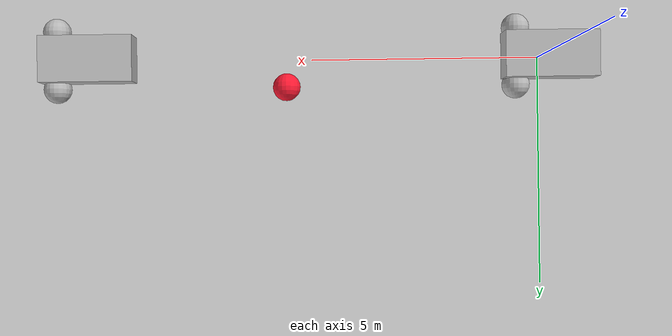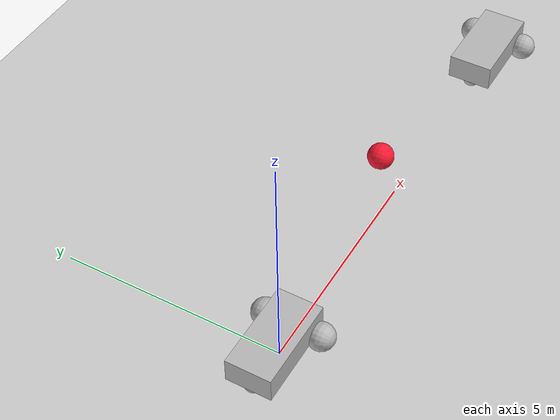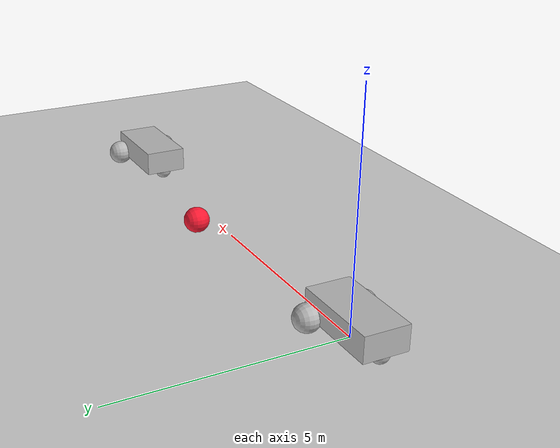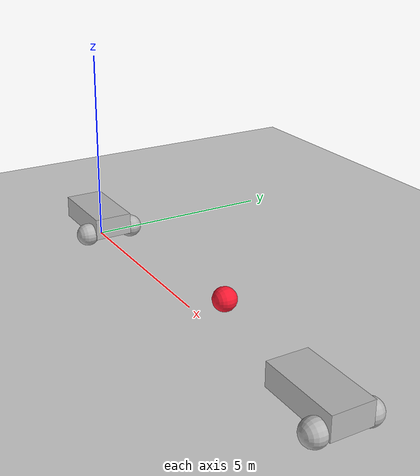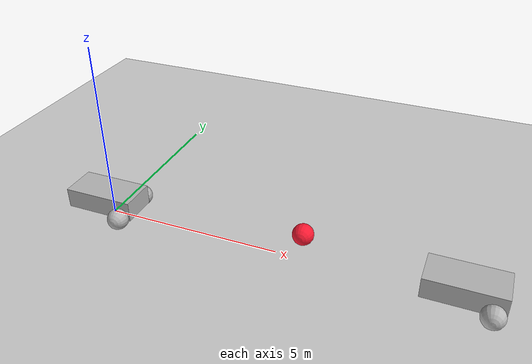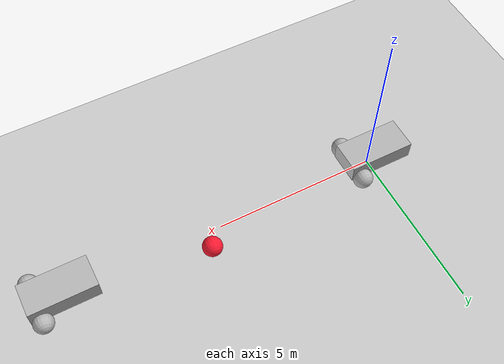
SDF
<?xml version="1.0"?>
<sdf version="1.6">
  <world name="default">

    <include>
      <uri>model://ground_plane</uri>
    </include>

    <include>
      <uri>model://sun</uri>
    </include>

    <model name='vehicle'>
      <pose>0 0 0.325 0 -0 0</pose>

      <link name='chassis'>
        <pose>-0.151427 -0 0.175 0 -0 0</pose>
        <inertial>
          <mass>1.14395</mass>
          <inertia>
            <ixx>0.126164</ixx>
            <ixy>0</ixy>
            <ixz>0</ixz>
            <iyy>0.416519</iyy>
            <iyz>0</iyz>
            <izz>0.481014</izz>
          </inertia>
        </inertial>
        <visual name='visual'>
          <geometry>
            <box>
              <size>2.01142 1 0.568726</size>
            </box>
          </geometry>
        </visual>
        <collision name='collision'>
          <geometry>
            <box>
              <size>2.01142 1 0.568726</size>
            </box>
          </geometry>
        </collision>
      </link>

      <link name='left_wheel'>
        <pose>0.554283 0.625029 -0.025 -1.5707 0 0</pose>
        <inertial>
          <mass>2</mass>
          <inertia>
            <ixx>0.145833</ixx>
            <ixy>0</ixy>
            <ixz>0</ixz>
            <iyy>0.145833</iyy>
            <iyz>0</iyz>
            <izz>0.125</izz>
          </inertia>
        </inertial>
        <visual name='visual'>
          <geometry>
            <sphere>
              <radius>0.3</radius>
            </sphere>
          </geometry>
        </visual>
        <collision name='collision'>
          <geometry>
            <sphere>
              <radius>0.3</radius>
            </sphere>
          </geometry>
          <surface>
            <friction>
              <ode>
                <mu>1</mu>
                <mu2>1</mu2>
                <slip1>0</slip1>
                <slip2>0</slip2>
              </ode>
            </friction>
            <contact>
              <ode>
                <soft_cfm>0</soft_cfm>
                <soft_erp>0.2</soft_erp>
                <kp>1e+13</kp>
                <kd>1</kd>
                <max_vel>0.01</max_vel>
                <min_depth>0.01</min_depth>
              </ode>
            </contact>
          </surface>
        </collision>
      </link>

      <link name='right_wheel'>
        <pose>0.554282 -0.625029 -0.025 -1.5707 0 0</pose>
        <inertial>
          <mass>2</mass>
          <inertia>
            <ixx>0.145833</ixx>
            <ixy>0</ixy>
            <ixz>0</ixz>
            <iyy>0.145833</iyy>
            <iyz>0</iyz>
            <izz>0.125</izz>
          </inertia>
        </inertial>
        <visual name='visual'>
          <geometry>
            <sphere>
              <radius>0.3</radius>
            </sphere>
          </geometry>
        </visual>
        <collision name='collision'>
          <geometry>
            <sphere>
              <radius>0.3</radius>
            </sphere>
          </geometry>
          <surface>
            <friction>
              <ode>
                <mu>1</mu>
                <mu2>1</mu2>
                <slip1>0</slip1>
                <slip2>0</slip2>
              </ode>
            </friction>
            <contact>
              <ode>
                <soft_cfm>0</soft_cfm>
                <soft_erp>0.2</soft_erp>
                <kp>1e+13</kp>
                <kd>1</kd>
                <max_vel>0.01</max_vel>
                <min_depth>0.01</min_depth>
              </ode>
            </contact>
          </surface>
        </collision>
      </link>

      <link name='caster'>
        <pose>-0.957138 -0 -0.125 0 -0 0</pose>
        <inertial>
          <mass>1</mass>
          <inertia>
            <ixx>0.1</ixx>
            <ixy>0</ixy>
            <ixz>0</ixz>
            <iyy>0.1</iyy>
            <iyz>0</iyz>
            <izz>0.1</izz>
          </inertia>
        </inertial>
        <visual name='visual'>
          <geometry>
            <sphere>
              <radius>0.2</radius>
            </sphere>
          </geometry>
        </visual>
        <collision name='collision'>
          <geometry>
            <sphere>
              <radius>0.2</radius>
            </sphere>
          </geometry>
        </collision>
      </link>

      <link name="camera_link">
        <pose>1 0 0.125 0 0 0</pose>
        <sensor type="camera" name="camera1">
          <update_rate>60</update_rate>
          <visualize>true</visualize>
          <camera name="head">
            <horizontal_fov>1.3962634</horizontal_fov>
            <image>
              <width>640</width>
              <height>480</height>
              <format>R8G8B8</format>
            </image>
            <clip>
              <near>0.02</near>
              <far>300</far>
            </clip>
            <noise>
              <type>gaussian</type>
              <mean>0.0</mean>
              <stddev>0.007</stddev>
            </noise>
          </camera>
          <plugin name="camera_controller" filename="libgazebo_ros_camera.so">
            <ros>
              <namespace>demo_cam</namespace>
              <!-- TODO(louise) Remapping not working due to https://github.com/ros-perception/image_common/issues/93 -->
            </ros>
          </plugin>
        </sensor>
      </link>

      <joint name='left_wheel_joint' type='revolute'>
        <parent>chassis</parent>
        <child>left_wheel</child>
        <axis>
          <xyz>0 0 1</xyz>
          <limit>
            <lower>-1.79769e+308</lower>
            <upper>1.79769e+308</upper>
          </limit>
        </axis>
      </joint>

      <joint name='camera_joint' type='fixed'>
        <parent>chassis</parent>
        <child>camera_link</child>
        <axis>
          <xyz>0 0 1</xyz>
          <limit>
            <lower>-1.79769e+308</lower>
            <upper>1.79769e+308</upper>
          </limit>
        </axis>
      </joint>

      <joint name='right_wheel_joint' type='revolute'>
        <parent>chassis</parent>
        <child>right_wheel</child>
        <axis>
          <xyz>0 0 1</xyz>
          <limit>
            <lower>-1.79769e+308</lower>
            <upper>1.79769e+308</upper>
          </limit>
        </axis>
      </joint>

      <joint name='caster_wheel' type='ball'>
        <parent>chassis</parent>
        <child>caster</child>
      </joint>

      <plugin name='diff_drive' filename='libgazebo_ros_diff_drive.so'>

        <ros>
          <namespace>/demo</namespace>
          <remapping>cmd_vel:=cmd_demo</remapping>
          <remapping>odom:=odom_demo</remapping>
        </ros>

        <!-- wheels -->
        <left_joint>left_wheel_joint</left_joint>
        <right_joint>right_wheel_joint</right_joint>

        <!-- kinematics -->
        <wheel_separation>1.25</wheel_separation>
        <wheel_diameter>0.6</wheel_diameter>

        <!-- limits -->
        <max_wheel_torque>20</max_wheel_torque>
        <max_wheel_acceleration>1.0</max_wheel_acceleration>

        <!-- output -->
        <publish_odom>true</publish_odom>
        <publish_odom_tf>true</publish_odom_tf>
        <publish_wheel_tf>true</publish_wheel_tf>

        <odometry_frame>odom_demo</odometry_frame>
        <robot_base_frame>chassis</robot_base_frame>

      </plugin>

    </model>

    <model name='vehicle2'>
      <pose>10 0 0.325 0 -0 0</pose>

      <link name='chassis2'>
        <pose>-0.151427 -0 0.175 0 -0 0</pose>
        <inertial>
          <mass>1.14395</mass>
          <inertia>
            <ixx>0.126164</ixx>
            <ixy>0</ixy>
            <ixz>0</ixz>
            <iyy>0.416519</iyy>
            <iyz>0</iyz>
            <izz>0.481014</izz>
          </inertia>
        </inertial>
        <visual name='visual2'>
          <geometry>
            <box>
              <size>2.01142 1 0.568726</size>
            </box>
          </geometry>
        </visual>
        <collision name='collision2'>
          <geometry>
            <box>
              <size>2.01142 1 0.568726</size>
            </box>
          </geometry>
        </collision>
      </link>

      <link name='left_wheel2'>
        <pose>0.554283 0.625029 -0.025 -1.5707 0 0</pose>
        <inertial>
          <mass>2</mass>
          <inertia>
            <ixx>0.145833</ixx>
            <ixy>0</ixy>
            <ixz>0</ixz>
            <iyy>0.145833</iyy>
            <iyz>0</iyz>
            <izz>0.125</izz>
          </inertia>
        </inertial>
        <visual name='visual2'>
          <geometry>
            <sphere>
              <radius>0.3</radius>
            </sphere>
          </geometry>
        </visual>
        <collision name='collision2'>
          <geometry>
            <sphere>
              <radius>0.3</radius>
            </sphere>
          </geometry>
          <surface>
            <friction>
              <ode>
                <mu>1</mu>
                <mu2>1</mu2>
                <slip1>0</slip1>
                <slip2>0</slip2>
              </ode>
            </friction>
            <contact>
              <ode>
                <soft_cfm>0</soft_cfm>
                <soft_erp>0.2</soft_erp>
                <kp>1e+13</kp>
                <kd>1</kd>
                <max_vel>0.01</max_vel>
                <min_depth>0.01</min_depth>
              </ode>
            </contact>
          </surface>
        </collision>
      </link>

      <link name='right_wheel2'>
        <pose>0.554282 -0.625029 -0.025 -1.5707 0 0</pose>
        <inertial>
          <mass>2</mass>
          <inertia>
            <ixx>0.145833</ixx>
            <ixy>0</ixy>
            <ixz>0</ixz>
            <iyy>0.145833</iyy>
            <iyz>0</iyz>
            <izz>0.125</izz>
          </inertia>
        </inertial>
        <visual name='visual2'>
          <geometry>
            <sphere>
              <radius>0.3</radius>
            </sphere>
          </geometry>
        </visual>
        <collision name='collision2'>
          <geometry>
            <sphere>
              <radius>0.3</radius>
            </sphere>
          </geometry>
          <surface>
            <friction>
              <ode>
                <mu>1</mu>
                <mu2>1</mu2>
                <slip1>0</slip1>
                <slip2>0</slip2>
              </ode>
            </friction>
            <contact>
              <ode>
                <soft_cfm>0</soft_cfm>
                <soft_erp>0.2</soft_erp>
                <kp>1e+13</kp>
                <kd>1</kd>
                <max_vel>0.01</max_vel>
                <min_depth>0.01</min_depth>
              </ode>
            </contact>
          </surface>
        </collision>
      </link>

      <link name='caster2'>
        <pose>-0.957138 -0 -0.125 0 -0 0</pose>
        <inertial>
          <mass>1</mass>
          <inertia>
            <ixx>0.1</ixx>
            <ixy>0</ixy>
            <ixz>0</ixz>
            <iyy>0.1</iyy>
            <iyz>0</iyz>
            <izz>0.1</izz>
          </inertia>
        </inertial>
        <visual name='visual2'>
          <geometry>
            <sphere>
              <radius>0.2</radius>
            </sphere>
          </geometry>
        </visual>
        <collision name='collision2'>
          <geometry>
            <sphere>
              <radius>0.2</radius>
            </sphere>
          </geometry>
        </collision>
      </link>

      <link name="camera_link2">
        <pose>1 0 0.125 0 0 0</pose>
        <sensor type="camera" name="camera2">
          <update_rate>60</update_rate>
          <visualize>true</visualize>
          <camera name="head">
            <horizontal_fov>1.3962634</horizontal_fov>
            <image>
              <width>640</width>
              <height>480</height>
              <format>R8G8B8</format>
            </image>
            <clip>
              <near>0.02</near>
              <far>300</far>
            </clip>
            <noise>
              <type>gaussian</type>
              <mean>0.0</mean>
              <stddev>0.007</stddev>
            </noise>
          </camera>
          <plugin name="camera_controller" filename="libgazebo_ros_camera.so">
            <ros>
              <namespace>demo_cam</namespace>
              <!-- TODO(louise) Remapping not working due to https://github.com/ros-perception/image_common/issues/93 -->
            </ros>
          </plugin>
        </sensor>
      </link>

      <joint name='left_wheel_joint2' type='revolute'>
        <parent>chassis2</parent>
        <child>left_wheel2</child>
        <axis>
          <xyz>0 0 1</xyz>
          <limit>
            <lower>-1.79769e+308</lower>
            <upper>1.79769e+308</upper>
          </limit>
        </axis>
      </joint>

      <joint name='camera_joint2' type='fixed'>
        <parent>chassis2</parent>
        <child>camera_link2</child>
        <axis>
          <xyz>0 0 1</xyz>
          <limit>
            <lower>-1.79769e+308</lower>
            <upper>1.79769e+308</upper>
          </limit>
        </axis>
      </joint>

      <joint name='right_wheel_joint2' type='revolute'>
        <parent>chassis2</parent>
        <child>right_wheel2</child>
        <axis>
          <xyz>0 0 1</xyz>
          <limit>
            <lower>-1.79769e+308</lower>
            <upper>1.79769e+308</upper>
          </limit>
        </axis>
      </joint>

      <joint name='caster_wheel2' type='ball'>
        <parent>chassis2</parent>
        <child>caster2</child>
      </joint>

      <plugin name='diff_drive' filename='libgazebo_ros_diff_drive.so'>

        <ros>
          <namespace>/demo</namespace>
          <remapping>cmd_vel:=cmd_demo2</remapping>
          <remapping>odom:=odom_demo</remapping>
        </ros>

        <!-- wheels -->
        <left_joint>left_wheel_joint2</left_joint>
        <right_joint>right_wheel_joint2</right_joint>

        <!-- kinematics -->
        <wheel_separation>1.25</wheel_separation>
        <wheel_diameter>0.6</wheel_diameter>

        <!-- limits -->
        <max_wheel_torque>20</max_wheel_torque>
        <max_wheel_acceleration>1.0</max_wheel_acceleration>

        <!-- output -->
        <publish_odom>true</publish_odom>
        <publish_odom_tf>true</publish_odom_tf>
        <publish_wheel_tf>true</publish_wheel_tf>

        <odometry_frame>odom_demo</odometry_frame>
        <robot_base_frame>chassis2</robot_base_frame>

      </plugin>

    </model>

    <model name='ball'>
      <pose>5 0 0.325 0 -0 0</pose>
      <link name='ball_body'>
        <pose>0.554283 0.625029 -0.025 -1.5707 0 0</pose>
        <inertial>
          <mass>2</mass>
          <inertia>
            <ixx>0.145833</ixx>
            <ixy>0</ixy>
            <ixz>0</ixz>
            <iyy>0.145833</iyy>
            <iyz>0</iyz>
            <izz>0.125</izz>
          </inertia>
        </inertial>

        <visual name='visual2'>
          <geometry>
            <sphere>
              <radius>0.3</radius>
            </sphere>
          </geometry>
            <material> <!-- Wheel material -->
            <ambient>1 0.1 0.1 1</ambient>
            <diffuse>1 0.1 0.2 1</diffuse>
            <specular>1 0 0 0</specular>
            <emissive>1 0 0 1</emissive>
          </material> <!-- End wheel material -->
        </visual>
        <collision name='collision2'>
          <geometry>
            <sphere>
              <radius>0.3</radius>
            </sphere>
          </geometry>
          <surface>
            <friction>
              <ode>
                <mu>1</mu>
                <mu2>1</mu2>
                <slip1>0</slip1>
                <slip2>0</slip2>
              </ode>
            </friction>
            <contact>
              <ode>
                <soft_cfm>0</soft_cfm>
                <soft_erp>0.2</soft_erp>
                <kp>1e+13</kp>
                <kd>1</kd>
                <max_vel>0.01</max_vel>
                <min_depth>0.01</min_depth>
              </ode>
            </contact>
          </surface>
        </collision>
      </link>

      <ros>
          <namespace>/demo</namespace>
          <remapping>cmd_vel:=cmd_ball</remapping>
          <remapping>odom:=odom_demo</remapping>
      </ros>
    </model>

  </world>
</sdf>
